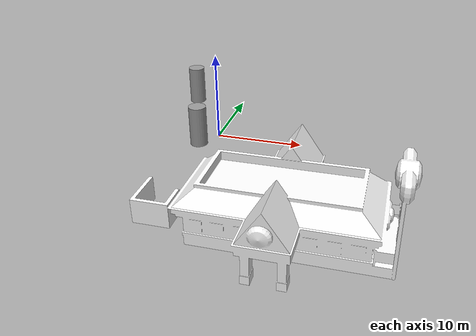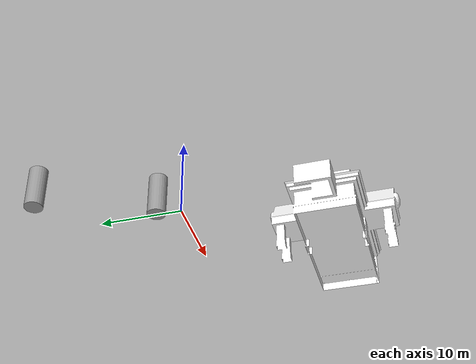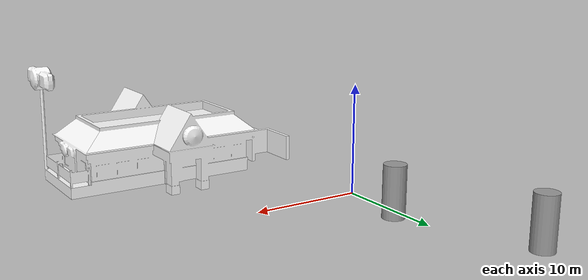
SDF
<?xml version='1.0'?>
<sdf version='1.6'>
  <model name='test'>
    <link name='link_0'>
      <inertial>
        <mass>24.3931</mass>
        <inertia>
          <ixx>60.1201</ixx>
          <ixy>0</ixy>
          <ixz>0</ixz>
          <iyy>60.1201</iyy>
          <iyz>0</iyz>
          <izz>14.5905</izz>
        </inertia>
        <pose frame=''>0 0 0 0 -0 0</pose>
      </inertial>
      <pose frame=''>-8.35622 14.6375 0.166667 0 -0 0</pose>
      <visual name='visual'>
        <pose frame=''>0 0 0 0 -0 0</pose>
        <geometry>
          <cylinder>
            <radius>1.09375</radius>
            <length>5.09772</length>
          </cylinder>
        </geometry>
        <material>
          <lighting>1</lighting>
          <script>
            <uri>file://media/materials/scripts/gazebo.material</uri>
            <name>Gazebo/Grey</name>
          </script>
          <shader type='pixel'/>
        </material>
        <transparency>0</transparency>
        <cast_shadows>1</cast_shadows>
      </visual>
      <collision name='collision'>
        <laser_retro>0</laser_retro>
        <max_contacts>10</max_contacts>
        <pose frame=''>0 0 0 0 -0 0</pose>
        <geometry>
          <cylinder>
            <radius>1.09375</radius>
            <length>5.09772</length>
          </cylinder>
        </geometry>
        <surface>
          <friction>
            <ode>
              <mu>1</mu>
              <mu2>1</mu2>
              <fdir1>0 0 0</fdir1>
              <slip1>0</slip1>
              <slip2>0</slip2>
            </ode>
            <torsional>
              <coefficient>1</coefficient>
              <patch_radius>0</patch_radius>
              <surface_radius>0</surface_radius>
              <use_patch_radius>1</use_patch_radius>
              <ode>
                <slip>0</slip>
              </ode>
            </torsional>
          </friction>
          <bounce>
            <restitution_coefficient>0</restitution_coefficient>
            <threshold>1e+06</threshold>
          </bounce>
          <contact>
            <collide_without_contact>0</collide_without_contact>
            <collide_without_contact_bitmask>1</collide_without_contact_bitmask>
            <collide_bitmask>1</collide_bitmask>
            <ode>
              <soft_cfm>0</soft_cfm>
              <soft_erp>0.2</soft_erp>
              <kp>1e+13</kp>
              <kd>1</kd>
              <max_vel>0.01</max_vel>
              <min_depth>0</min_depth>
            </ode>
            <bullet>
              <split_impulse>1</split_impulse>
              <split_impulse_penetration_threshold>-0.01</split_impulse_penetration_threshold>
              <soft_cfm>0</soft_cfm>
              <soft_erp>0.2</soft_erp>
              <kp>1e+13</kp>
              <kd>1</kd>
            </bullet>
          </contact>
        </surface>
      </collision>
    </link>
    <link name='link_0_clone'>
      <inertial>
        <mass>24.3931</mass>
        <inertia>
          <ixx>60.1201</ixx>
          <ixy>0</ixy>
          <ixz>0</ixz>
          <iyy>60.1201</iyy>
          <iyz>0</iyz>
          <izz>14.5905</izz>
        </inertia>
        <pose frame=''>0 0 0 0 -0 0</pose>
      </inertial>
      <pose frame=''>-3.38583 1.78888 0.166667 0 -0 0</pose>
      <gravity>1</gravity>
      <self_collide>0</self_collide>
      <kinematic>0</kinematic>
      <enable_wind>0</enable_wind>
      <visual name='visual'>
        <pose frame=''>0 0 0 0 -0 0</pose>
        <geometry>
          <cylinder>
            <radius>1.09375</radius>
            <length>5.09772</length>
          </cylinder>
        </geometry>
        <material>
          <lighting>1</lighting>
          <script>
            <uri>file://media/materials/scripts/gazebo.material</uri>
            <name>Gazebo/Grey</name>
          </script>
          <shader type='pixel'>
            <normal_map>__default__</normal_map>
          </shader>
          <ambient>0.3 0.3 0.3 1</ambient>
          <diffuse>0.7 0.7 0.7 1</diffuse>
          <specular>0.01 0.01 0.01 1</specular>
          <emissive>0 0 0 1</emissive>
        </material>
        <transparency>0</transparency>
        <cast_shadows>1</cast_shadows>
      </visual>
      <collision name='collision'>
        <laser_retro>0</laser_retro>
        <max_contacts>10</max_contacts>
        <pose frame=''>0 0 0 0 -0 0</pose>
        <geometry>
          <cylinder>
            <radius>1.09375</radius>
            <length>5.09772</length>
          </cylinder>
        </geometry>
        <surface>
          <friction>
            <ode>
              <mu>1</mu>
              <mu2>1</mu2>
              <fdir1>0 0 0</fdir1>
              <slip1>0</slip1>
              <slip2>0</slip2>
            </ode>
            <torsional>
              <coefficient>1</coefficient>
              <patch_radius>0</patch_radius>
              <surface_radius>0</surface_radius>
              <use_patch_radius>1</use_patch_radius>
              <ode>
                <slip>0</slip>
              </ode>
            </torsional>
          </friction>
          <bounce>
            <restitution_coefficient>0</restitution_coefficient>
            <threshold>1e+06</threshold>
          </bounce>
          <contact>
            <collide_without_contact>0</collide_without_contact>
            <collide_without_contact_bitmask>1</collide_without_contact_bitmask>
            <collide_bitmask>1</collide_bitmask>
            <ode>
              <soft_cfm>0</soft_cfm>
              <soft_erp>0.2</soft_erp>
              <kp>1e+13</kp>
              <kd>1</kd>
              <max_vel>0.01</max_vel>
              <min_depth>0</min_depth>
            </ode>
            <bullet>
              <split_impulse>1</split_impulse>
              <split_impulse_penetration_threshold>-0.01</split_impulse_penetration_threshold>
              <soft_cfm>0</soft_cfm>
              <soft_erp>0.2</soft_erp>
              <kp>1e+13</kp>
              <kd>1</kd>
            </bullet>
          </contact>
        </surface>
      </collision>
    </link>
    <model name='Fast Food'>
      <static>1</static>
      <link name='link'>
        <pose frame=''>0 0 3.15931 0 -0 0</pose>
        <collision name='collision'>
          <geometry>
            <mesh>
              <scale>3 3 2</scale>
              <uri>model://fast_food/meshes/fast_food.dae</uri>
            </mesh>
          </geometry>
        </collision>
        <visual name='visual'>
          <geometry>
            <mesh>
              <scale>3 3 2</scale>
              <uri>model://fast_food/meshes/fast_food.dae</uri>
            </mesh>
          </geometry>
          <material>
            <script>
              <uri>model://fast_food/materials/scripts</uri>
              <uri>model://fast_food/materials/textures</uri>
              <name>FastFood/Diffuse</name>
            </script>
            <shader type='normal_map_tangent_space'>
              <normal_map>FastFood_Normal.png</normal_map>
            </shader>
          </material>
        </visual>
      </link>
      <pose frame=''>11.7421 -16.4264 -0.333333 0 -0 0</pose>
    </model>
    <static>0</static>
    <allow_auto_disable>1</allow_auto_disable>
  </model>
</sdf>
